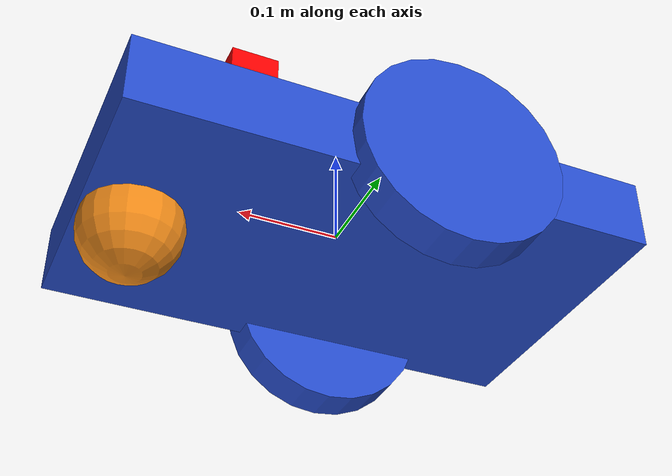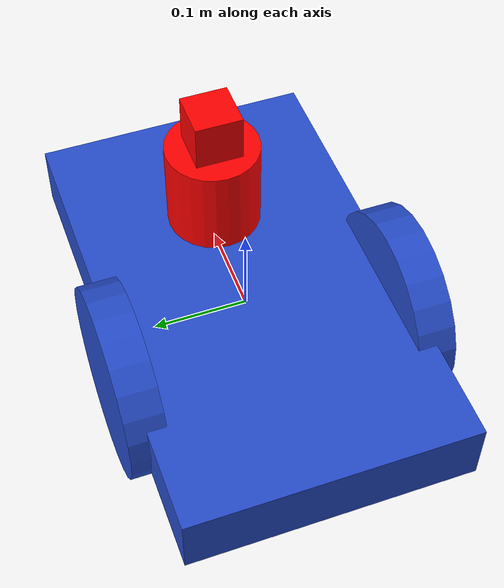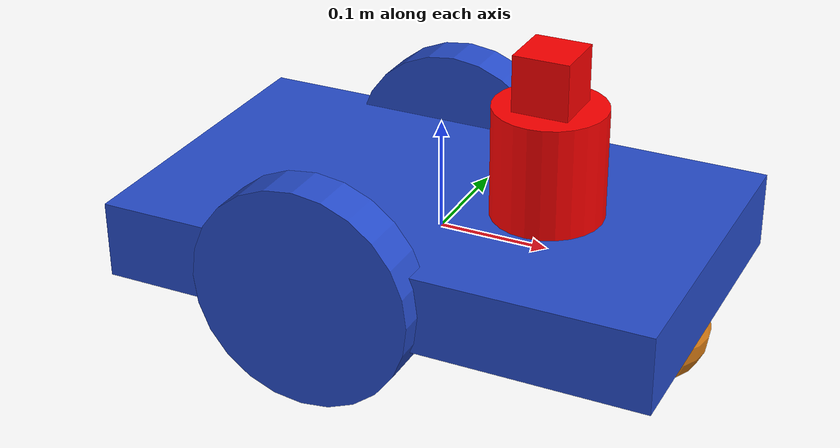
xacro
<?xml version="1.0"?>
<robot name="m2wr_cam_aruco" xmlns:xacro="http://www.ros.org/wiki/xacro" >

<xacro:include filename="$(find robot_urdf)/urdf/robot4.gazebo"/>
<xacro:include filename="$(find robot_urdf)/urdf/materials.xacro" />

<xacro:macro name="cylinder_inertia" params="mass r l">
	<inertia ixx="${mass*(3*r*r+l*l)/12}" ixy = "0" ixz = "0" iyy="${mass*(3*r*r+l*l)/12}" iyz = "0" izz="${mass*(r*r)/2}" />
</xacro:macro>

<xacro:macro name="link_wheel" params="name">
	<link name="${name}">
		<inertial>
			<mass value="0.2"/>
			<origin rpy="0 1.5707 1.5707" xyz="0 0 0"/>
			<inertia ixx="0.000526666666667" ixy="0" ixz="0" iyy="0.000526666666667" iyz="0" izz="0.001"/>
		</inertial>
	<collision name="link_right_wheel_collision">
		<origin rpy="0 1.5707 1.5707" xyz="0 0 0"/>
		<geometry>
			<cylinder length="0.04" radius="0.1"/>
		</geometry>
	</collision>
	<visual name="${name}_visual">
		<origin rpy="0 1.5707 1.5707" xyz="0 0 0"/>
		<geometry>
			<cylinder length="0.04" radius="0.1"/>
		</geometry>
	</visual>
	</link>
</xacro:macro>

<xacro:macro name="joint_wheel" params="name child origin_xyz">
	<joint name="${name}" type="continuous">
		<origin rpy="0 0 0" xyz="${origin_xyz}"/>
		<child link="${child}"/>
		<parent link="link_chassis"/>
		<axis rpy="0 0 0" xyz="0 1 0"/>
		<limit effort="10000" velocity="1000"/>
		<joint_properties damping="1.0" friction="1.0"/>
	</joint>
</xacro:macro>

<link name="link_chassis">
	<!-- pose and inertial -->
	<pose>0 0 0.1 0 0 0</pose>

	<inertial>
		<mass value="5"/>
		<origin rpy="0 0 0" xyz="0 0 0.1"/>
		<inertia ixx="0.0395416666667" ixy="0" ixz="0" iyy="0.106208333333" iyz="0" izz="0.106208333333"/>
	</inertial>

	<collision name="collision_chassis">
		<geometry>
			<box size="0.5 0.3 0.07"/>
		</geometry>
	</collision>

	<visual>
		<origin rpy="0 0 0" xyz="0 0 0"/>
		<geometry>
			<box size="0.5 0.3 0.07"/>
		</geometry>
		<material name="blue"/>
	</visual>

	<!-- caster front -->
	<collision name="caster_front_collision">
		<origin rpy=" 0 0 0" xyz="0.35 0 -0.05"/>
		<geometry>
			<sphere radius="0.05"/>
		</geometry>
		<surface>
			<friction>
				<ode>
					<mu>0</mu>
					<mu2>0</mu2>
					<slip1>1.0</slip1>
					<slip2>1.0</slip2>
				</ode>
			</friction>
		</surface>
	</collision>
	<visual name="caster_front_visual">
		<origin rpy=" 0 0 0" xyz="0.2 0 -0.05"/>
		<geometry>
			<sphere radius="0.05"/>
		</geometry>
	</visual>
</link>

  <!-- Create wheels -->

  <xacro:link_wheel name="link_right_wheel" />
  <xacro:link_wheel name="link_left_wheel" />
  <xacro:joint_wheel name="joint_right_wheel"  child="link_right_wheel"  origin_xyz="-0.05 0.15 0"  />
  <xacro:joint_wheel name="joint_left_wheel"   child="link_left_wheel"   origin_xyz="-0.05 -0.15 0"  />

<link name="link_camera_rot">
	<inertial>
  		<mass value="0.025"/>
  		<origin xyz="0 0 0" rpy="0 0 0" />
  		<inertia ixx="0.000010279" ixy="0" ixz="0" iyy="0.000010279" iyz="0" izz="0.000007225"/>
  	</inertial>
	<collision>
  	  <origin xyz="0 0 0" rpy="0 0 0"/>
      <geometry>
        <cylinder radius="0.05" length="0.1"/>
      </geometry>
  	</collision>
	<visual>
  	  <origin xyz="0 0 0" rpy="0 0 0"/>
      <geometry>
        <cylinder radius="0.05" length="0.1"/>
      </geometry>
      <material name="red" />
  	</visual>
</link>

<joint name="joint_camera_rot" type="revolute">
	<origin rpy="0 0 0" xyz="0.1 0 0.085"/>
	<child link="link_camera_rot"/>
	<parent link="link_chassis"/>
	<axis rpy="0 0 0" xyz="0 0 1"/>
	<limit effort="1.0" lower="0" upper="6.29" velocity="10.0"/>
</joint>

<link name="camera_link">
	<collision>
		<origin xyz="0 0 0.075" rpy="0 0 0"/>
		<geometry>
			<box size="0.05 0.05 0.05"/>
		</geometry>
	</collision>
	<visual>
		<origin xyz="0 0 0" rpy="0 0 0"/>
		<geometry>
			<box size="0.05 0.05 0.05"/>
		</geometry>
		<material name="red">
		<color rgba="1 0 0 1"/>
		</material>
	</visual>
	<inertial>
		<mass value="1e-5" />
		<origin xyz="0 0 0" rpy="0 0 0"/>
		<inertia ixx="1e-6" ixy="0" ixz="0" iyy="1e-6" iyz="0" izz="1e-6" />
	</inertial>
</link>

<joint name="camera_joint" type="fixed">
	<axis xyz="0 0 1" />
	<origin xyz="0 0 0.075" rpy="0 0 0"/>
	<parent link="link_camera_rot"/>
	<child link="camera_link"/>
</joint>

</robot>
